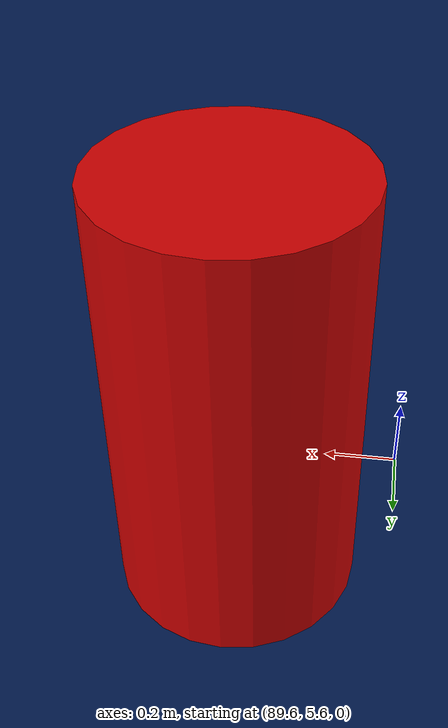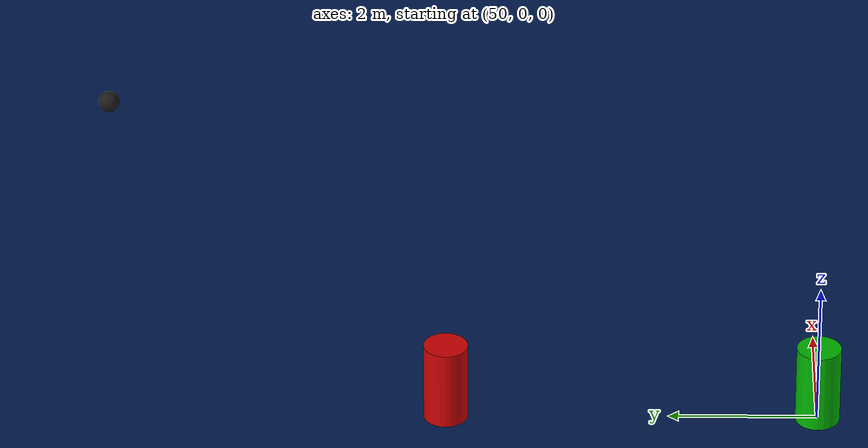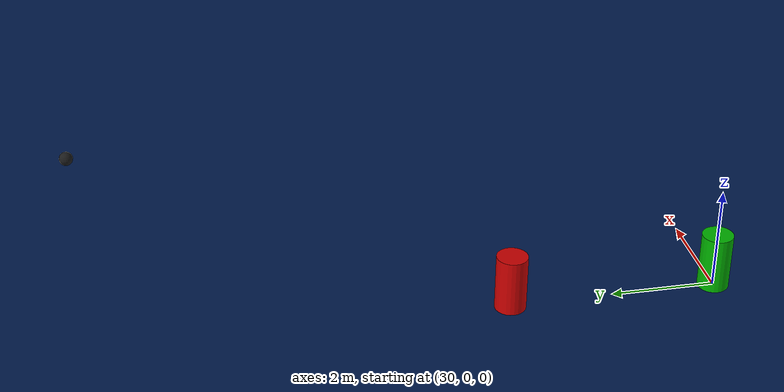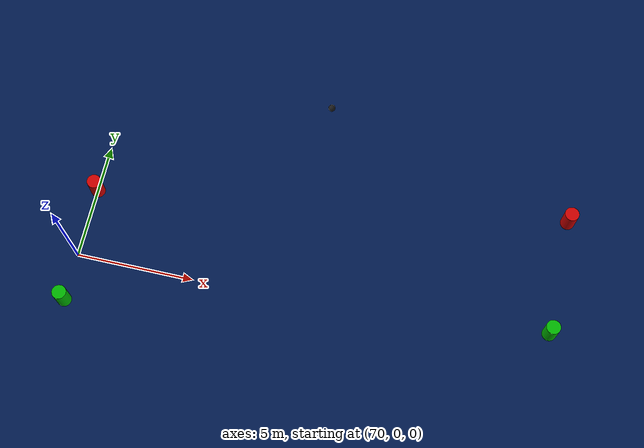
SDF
<?xml version="1.0" ?>
<sdf version="1.10">
  <world name="ucsd_robotx_demo">
    <physics name="1ms" type="ode">
      <max_step_size>0.001</max_step_size>
      <real_time_factor>1.0</real_time_factor>
    </physics>

    <scene>
      <ambient>0.4 0.4 0.4 1.0</ambient>
      <background>0.6 0.7 0.85 1.0</background>
      <shadows>true</shadows>
    </scene>

    <light name="sun" type="directional">
      <cast_shadows>true</cast_shadows>
      <pose>0 0 120 0 0 0</pose>
      <diffuse>0.9 0.9 0.9 1</diffuse>
      <specular>0.4 0.4 0.4 1</specular>
      <attenuation>
        <range>1000</range>
        <constant>0.9</constant>
        <linear>0.01</linear>
        <quadratic>0.001</quadratic>
      </attenuation>
      <direction>0.5 -0.5 -1.0</direction>
    </light>

    <!-- Required for time stepping, scene sync, and camera rendering (Harmonic). Without these,
         RTF stays at 0% and /drone/camera publishes no real images. -->
    <plugin filename="gz-sim-physics-system" name="gz::sim::systems::Physics">
    </plugin>
    <plugin filename="gz-sim-user-commands-system" name="gz::sim::systems::UserCommands">
    </plugin>
    <plugin filename="gz-sim-scene-broadcaster-system" name="gz::sim::systems::SceneBroadcaster">
    </plugin>
    <plugin filename="gz-sim-sensors-system" name="gz::sim::systems::Sensors">
      <render_engine>ogre2</render_engine>
    </plugin>

    <!-- No gz-sim-waves-system: optional; many installs lack that library. -->

    <model name="ocean_surface">
      <static>true</static>
      <pose>0 0 0 0 0 0</pose>
      <link name="water_link">
        <visual name="water_visual">
          <geometry>
            <plane>
              <normal>0 0 1</normal>
              <size>500 500</size>
            </plane>
          </geometry>
          <material>
            <ambient>0.0 0.1 0.3 0.85</ambient>
            <diffuse>0.0 0.1 0.3 0.85</diffuse>
            <specular>0.8 0.8 0.8 1.0</specular>
            <emissive>0.0 0.0 0.02 0.0</emissive>
          </material>
          <transparency>0.15</transparency>
        </visual>
      </link>
    </model>

    <!-- Entrance gate -->
    <model name="entrance_green">
      <static>true</static>
      <pose>30 0 0.5 0 0 0</pose>
      <link name="link">
        <visual name="visual">
          <geometry>
            <cylinder>
              <radius>0.3</radius>
              <length>1.2</length>
            </cylinder>
          </geometry>
          <material>
            <ambient>0.0 0.6 0.0 1</ambient>
            <diffuse>0.0 0.7 0.0 1</diffuse>
            <specular>0.2 0.2 0.2 1</specular>
            <emissive>0.0 1.0 0.0 1</emissive>
          </material>
        </visual>
      </link>
    </model>

    <model name="entrance_red">
      <static>true</static>
      <pose>30 4 0.5 0 0 0</pose>
      <link name="link">
        <visual name="visual">
          <geometry>
            <cylinder>
              <radius>0.3</radius>
              <length>1.2</length>
            </cylinder>
          </geometry>
          <material>
            <ambient>0.6 0.0 0.0 1</ambient>
            <diffuse>0.8 0.0 0.0 1</diffuse>
            <specular>0.2 0.2 0.2 1</specular>
            <emissive>1.0 0.0 0.0 1</emissive>
          </material>
        </visual>
      </link>
    </model>

    <!-- Navigation channel gate pairs -->
    <model name="gate1_green">
      <static>true</static>
      <pose>50 0 0.5 0 0 0</pose>
      <link name="link">
        <visual name="visual">
          <geometry><cylinder><radius>0.3</radius><length>1.2</length></cylinder></geometry>
          <material><ambient>0.0 0.5 0.0 1</ambient><diffuse>0.0 0.7 0.0 1</diffuse><emissive>0.0 1.0 0.0 1</emissive></material>
        </visual>
      </link>
    </model>
    <model name="gate1_red">
      <static>true</static>
      <pose>50 5 0.5 0 0 0</pose>
      <link name="link">
        <visual name="visual">
          <geometry><cylinder><radius>0.3</radius><length>1.2</length></cylinder></geometry>
          <material><ambient>0.5 0.0 0.0 1</ambient><diffuse>0.8 0.0 0.0 1</diffuse><emissive>1.0 0.0 0.0 1</emissive></material>
        </visual>
      </link>
    </model>

    <model name="gate2_green">
      <static>true</static>
      <pose>70 -2 0.5 0 0 0</pose>
      <link name="link">
        <visual name="visual">
          <geometry><cylinder><radius>0.3</radius><length>1.2</length></cylinder></geometry>
          <material><ambient>0.0 0.5 0.0 1</ambient><diffuse>0.0 0.7 0.0 1</diffuse><emissive>0.0 1.0 0.0 1</emissive></material>
        </visual>
      </link>
    </model>
    <model name="gate2_red">
      <static>true</static>
      <pose>70 3 0.5 0 0 0</pose>
      <link name="link">
        <visual name="visual">
          <geometry><cylinder><radius>0.3</radius><length>1.2</length></cylinder></geometry>
          <material><ambient>0.5 0.0 0.0 1</ambient><diffuse>0.8 0.0 0.0 1</diffuse><emissive>1.0 0.0 0.0 1</emissive></material>
        </visual>
      </link>
    </model>

    <model name="gate3_green">
      <static>true</static>
      <pose>90 1 0.5 0 0 0</pose>
      <link name="link">
        <visual name="visual">
          <geometry><cylinder><radius>0.3</radius><length>1.2</length></cylinder></geometry>
          <material><ambient>0.0 0.5 0.0 1</ambient><diffuse>0.0 0.7 0.0 1</diffuse><emissive>0.0 1.0 0.0 1</emissive></material>
        </visual>
      </link>
    </model>
    <model name="gate3_red">
      <static>true</static>
      <pose>90 6 0.5 0 0 0</pose>
      <link name="link">
        <visual name="visual">
          <geometry><cylinder><radius>0.3</radius><length>1.2</length></cylinder></geometry>
          <material><ambient>0.5 0.0 0.0 1</ambient><diffuse>0.8 0.0 0.0 1</diffuse><emissive>1.0 0.0 0.0 1</emissive></material>
        </visual>
      </link>
    </model>

    <!-- Scan-the-code equivalent buoy -->
    <model name="light_buoy">
      <static>true</static>
      <pose>110 3 1.0 0 0 0</pose>
      <link name="link">
        <visual name="body">
          <geometry>
            <box>
              <size>0.5 0.5 0.5</size>
            </box>
          </geometry>
          <material>
            <ambient>0.1 0.1 0.1 1</ambient>
            <diffuse>0.1 0.1 0.1 1</diffuse>
            <specular>0.2 0.2 0.2 1</specular>
          </material>
        </visual>
        <visual name="led_face">
          <pose>0.251 0 0 0 0 0</pose>
          <geometry>
            <box>
              <size>0.01 0.35 0.35</size>
            </box>
          </geometry>
          <material>
            <ambient>0.4 0.0 0.0 1</ambient>
            <diffuse>0.8 0.0 0.0 1</diffuse>
            <emissive>1.0 0.1 0.1 1</emissive>
          </material>
        </visual>
      </link>
      <light name="pulse_led" type="point">
        <pose>0.3 0 0 0 0 0</pose>
        <diffuse>1.0 0.0 0.0 1</diffuse>
        <specular>0.2 0.0 0.0 1</specular>
        <attenuation>
          <range>30</range>
          <constant>0.3</constant>
          <linear>0.02</linear>
          <quadratic>0.002</quadratic>
        </attenuation>
      </light>
    </model>

    <!-- Marker buoys (small dark objects) -->
    <model name="marker_1"><static>true</static><pose>37 12 0.15 0 0 0</pose><link name="l"><visual name="v"><geometry><sphere><radius>0.15</radius></sphere></geometry><material><ambient>0.08 0.08 0.08 1</ambient><diffuse>0.1 0.1 0.1 1</diffuse></material></visual></link></model>
    <model name="marker_2"><static>true</static><pose>45 -8 0.15 0 0 0</pose><link name="l"><visual name="v"><geometry><sphere><radius>0.15</radius></sphere></geometry><material><ambient>0.08 0.08 0.08 1</ambient><diffuse>0.1 0.1 0.1 1</diffuse></material></visual></link></model>
    <model name="marker_3"><static>true</static><pose>58 10 0.15 0 0 0</pose><link name="l"><visual name="v"><geometry><sphere><radius>0.15</radius></sphere></geometry><material><ambient>0.08 0.08 0.08 1</ambient><diffuse>0.1 0.1 0.1 1</diffuse></material></visual></link></model>
    <model name="marker_4"><static>true</static><pose>66 -11 0.15 0 0 0</pose><link name="l"><visual name="v"><geometry><sphere><radius>0.15</radius></sphere></geometry><material><ambient>0.08 0.08 0.08 1</ambient><diffuse>0.1 0.1 0.1 1</diffuse></material></visual></link></model>
    <model name="marker_5"><static>true</static><pose>79 9 0.15 0 0 0</pose><link name="l"><visual name="v"><geometry><sphere><radius>0.15</radius></sphere></geometry><material><ambient>0.08 0.08 0.08 1</ambient><diffuse>0.1 0.1 0.1 1</diffuse></material></visual></link></model>
    <model name="marker_6"><static>true</static><pose>91 -9 0.15 0 0 0</pose><link name="l"><visual name="v"><geometry><sphere><radius>0.15</radius></sphere></geometry><material><ambient>0.08 0.08 0.08 1</ambient><diffuse>0.1 0.1 0.1 1</diffuse></material></visual></link></model>
    <model name="marker_7"><static>true</static><pose>104 11 0.15 0 0 0</pose><link name="l"><visual name="v"><geometry><sphere><radius>0.15</radius></sphere></geometry><material><ambient>0.08 0.08 0.08 1</ambient><diffuse>0.1 0.1 0.1 1</diffuse></material></visual></link></model>
    <model name="marker_8"><static>true</static><pose>118 -6 0.15 0 0 0</pose><link name="l"><visual name="v"><geometry><sphere><radius>0.15</radius></sphere></geometry><material><ambient>0.08 0.08 0.08 1</ambient><diffuse>0.1 0.1 0.1 1</diffuse></material></visual></link></model>

    <!-- WAM-V omitted: VRX uses generated/Fuel layouts for the full USV; model://wam-v is not shipped.
         Re-add a Fuel URI or your own model if you want a surface vessel in this scene. -->
  </world>
</sdf>
